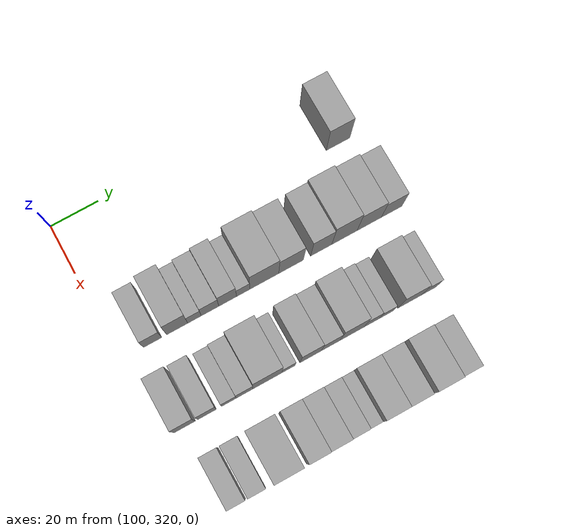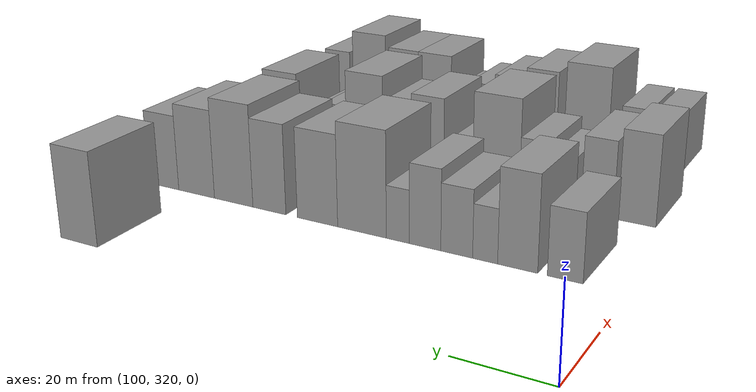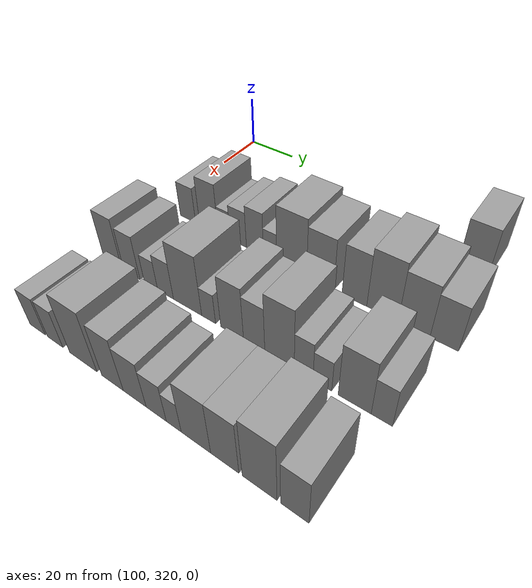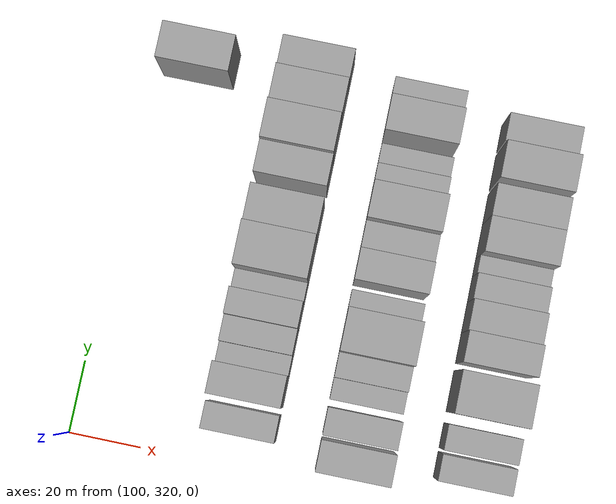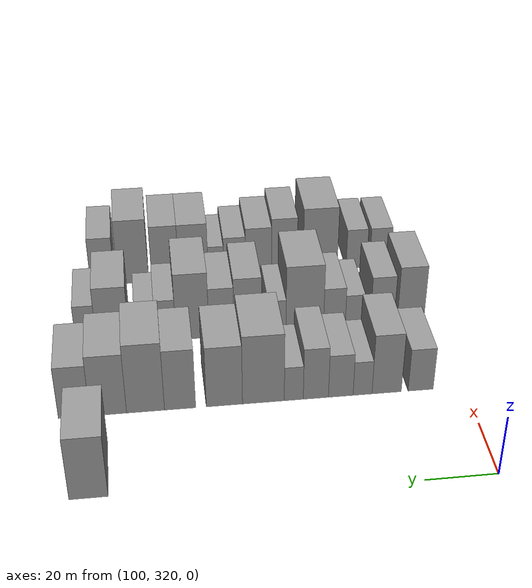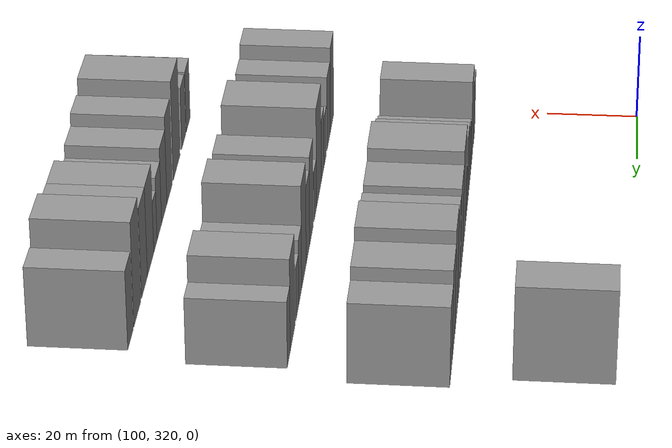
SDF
<sdf version="1.6">
 <world name="default">
  <model name="building_370">
   <static>1</static>
   <pose>114.0000 427.8332 0 0.000000 0.000000 0.000000</pose>
   <link name="link">
    <pose>0 0 10.50 0 0 0</pose>
    <collision name="collision"><geometry><box><size>20.0000 10.0763 21.0000</size></box></geometry></collision>
    <visual name="visual">
     <cast_shadows>0</cast_shadows>
     <geometry><box><size>20.0000 10.0763 21.0000</size></box></geometry>
     <material>
      <script>
       <uri>model://grey_wall/materials/scripts</uri>
       <uri>model://grey_wall/materials/textures</uri>
       <name>vrc/grey_wall</name>
      </script>
     </material>
    </visual>
   </link>
  </model>
  <model name="building_470">
   <static>1</static>
   <pose>146.0000 332.8654 0 0.000000 0.000000 0.000000</pose>
   <link name="link">
    <pose>0 0 7.50 0 0 0</pose>
    <collision name="collision"><geometry><box><size>20.0000 7.3906 15.0000</size></box></geometry></collision>
    <visual name="visual">
     <cast_shadows>0</cast_shadows>
     <geometry><box><size>20.0000 7.3906 15.0000</size></box></geometry>
     <material>
      <script>
       <uri>model://grey_wall/materials/scripts</uri>
       <uri>model://grey_wall/materials/textures</uri>
       <name>vrc/grey_wall</name>
      </script>
     </material>
    </visual>
   </link>
  </model>
  <model name="building_471">
   <static>1</static>
   <pose>146.0000 342.8603 0 0.000000 0.000000 0.000000</pose>
   <link name="link">
    <pose>0 0 10.50 0 0 0</pose>
    <collision name="collision"><geometry><box><size>20.0000 8.5992 21.0000</size></box></geometry></collision>
    <visual name="visual">
     <cast_shadows>0</cast_shadows>
     <geometry><box><size>20.0000 8.5992 21.0000</size></box></geometry>
     <material>
      <script>
       <uri>model://grey_wall/materials/scripts</uri>
       <uri>model://grey_wall/materials/textures</uri>
       <name>vrc/grey_wall</name>
      </script>
     </material>
    </visual>
   </link>
  </model>
  <model name="building_472">
   <static>1</static>
   <pose>146.0000 349.9110 0 0.000000 0.000000 0.000000</pose>
   <link name="link">
    <pose>0 0 6.00 0 0 0</pose>
    <collision name="collision"><geometry><box><size>20.0000 5.5022 12.0000</size></box></geometry></collision>
    <visual name="visual">
     <cast_shadows>0</cast_shadows>
     <geometry><box><size>20.0000 5.5022 12.0000</size></box></geometry>
     <material>
      <script>
       <uri>model://grey_wall/materials/scripts</uri>
       <uri>model://grey_wall/materials/textures</uri>
       <name>vrc/grey_wall</name>
      </script>
     </material>
    </visual>
   </link>
  </model>
  <model name="building_473">
   <static>1</static>
   <pose>146.0000 356.2573 0 0.000000 0.000000 0.000000</pose>
   <link name="link">
    <pose>0 0 7.50 0 0 0</pose>
    <collision name="collision"><geometry><box><size>20.0000 7.1904 15.0000</size></box></geometry></collision>
    <visual name="visual">
     <cast_shadows>0</cast_shadows>
     <geometry><box><size>20.0000 7.1904 15.0000</size></box></geometry>
     <material>
      <script>
       <uri>model://grey_wall/materials/scripts</uri>
       <uri>model://grey_wall/materials/textures</uri>
       <name>vrc/grey_wall</name>
      </script>
     </material>
    </visual>
   </link>
  </model>
  <model name="building_474">
   <static>1</static>
   <pose>146.0000 363.4944 0 0.000000 0.000000 0.000000</pose>
   <link name="link">
    <pose>0 0 9.00 0 0 0</pose>
    <collision name="collision"><geometry><box><size>20.0000 7.2838 18.0000</size></box></geometry></collision>
    <visual name="visual">
     <cast_shadows>0</cast_shadows>
     <geometry><box><size>20.0000 7.2838 18.0000</size></box></geometry>
     <material>
      <script>
       <uri>model://grey_wall/materials/scripts</uri>
       <uri>model://grey_wall/materials/textures</uri>
       <name>vrc/grey_wall</name>
      </script>
     </material>
    </visual>
   </link>
  </model>
  <model name="building_475">
   <static>1</static>
   <pose>146.0000 369.8766 0 0.000000 0.000000 0.000000</pose>
   <link name="link">
    <pose>0 0 6.00 0 0 0</pose>
    <collision name="collision"><geometry><box><size>20.0000 5.4807 12.0000</size></box></geometry></collision>
    <visual name="visual">
     <cast_shadows>0</cast_shadows>
     <geometry><box><size>20.0000 5.4807 12.0000</size></box></geometry>
     <material>
      <script>
       <uri>model://grey_wall/materials/scripts</uri>
       <uri>model://grey_wall/materials/textures</uri>
       <name>vrc/grey_wall</name>
      </script>
     </material>
    </visual>
   </link>
  </model>
  <model name="building_476">
   <static>1</static>
   <pose>146.0000 378.6039 0 0.000000 0.000000 0.000000</pose>
   <link name="link">
    <pose>0 0 12.00 0 0 0</pose>
    <collision name="collision"><geometry><box><size>20.0000 11.9739 24.0000</size></box></geometry></collision>
    <visual name="visual">
     <cast_shadows>0</cast_shadows>
     <geometry><box><size>20.0000 11.9739 24.0000</size></box></geometry>
     <material>
      <script>
       <uri>model://grey_wall/materials/scripts</uri>
       <uri>model://grey_wall/materials/textures</uri>
       <name>vrc/grey_wall</name>
      </script>
     </material>
    </visual>
   </link>
  </model>
  <model name="building_477">
   <static>1</static>
   <pose>146.0000 389.7558 0 0.000000 0.000000 0.000000</pose>
   <link name="link">
    <pose>0 0 10.50 0 0 0</pose>
    <collision name="collision"><geometry><box><size>20.0000 10.3299 21.0000</size></box></geometry></collision>
    <visual name="visual">
     <cast_shadows>0</cast_shadows>
     <geometry><box><size>20.0000 10.3299 21.0000</size></box></geometry>
     <material>
      <script>
       <uri>model://grey_wall/materials/scripts</uri>
       <uri>model://grey_wall/materials/textures</uri>
       <name>vrc/grey_wall</name>
      </script>
     </material>
    </visual>
   </link>
  </model>
  <model name="building_478">
   <static>1</static>
   <pose>146.0000 402.3404 0 0.000000 0.000000 0.000000</pose>
   <link name="link">
    <pose>0 0 10.50 0 0 0</pose>
    <collision name="collision"><geometry><box><size>20.0000 8.8393 21.0000</size></box></geometry></collision>
    <visual name="visual">
     <cast_shadows>0</cast_shadows>
     <geometry><box><size>20.0000 8.8393 21.0000</size></box></geometry>
     <material>
      <script>
       <uri>model://grey_wall/materials/scripts</uri>
       <uri>model://grey_wall/materials/textures</uri>
       <name>vrc/grey_wall</name>
      </script>
     </material>
    </visual>
   </link>
  </model>
  <model name="building_479">
   <static>1</static>
   <pose>146.0000 412.0929 0 0.000000 0.000000 0.000000</pose>
   <link name="link">
    <pose>0 0 12.00 0 0 0</pose>
    <collision name="collision"><geometry><box><size>20.0000 10.6656 24.0000</size></box></geometry></collision>
    <visual name="visual">
     <cast_shadows>0</cast_shadows>
     <geometry><box><size>20.0000 10.6656 24.0000</size></box></geometry>
     <material>
      <script>
       <uri>model://grey_wall/materials/scripts</uri>
       <uri>model://grey_wall/materials/textures</uri>
       <name>vrc/grey_wall</name>
      </script>
     </material>
    </visual>
   </link>
  </model>
  <model name="building_480">
   <static>1</static>
   <pose>146.0000 422.5593 0 0.000000 0.000000 0.000000</pose>
   <link name="link">
    <pose>0 0 10.50 0 0 0</pose>
    <collision name="collision"><geometry><box><size>20.0000 10.2672 21.0000</size></box></geometry></collision>
    <visual name="visual">
     <cast_shadows>0</cast_shadows>
     <geometry><box><size>20.0000 10.2672 21.0000</size></box></geometry>
     <material>
      <script>
       <uri>model://grey_wall/materials/scripts</uri>
       <uri>model://grey_wall/materials/textures</uri>
       <name>vrc/grey_wall</name>
      </script>
     </material>
    </visual>
   </link>
  </model>
  <model name="building_481">
   <static>1</static>
   <pose>146.0000 432.0831 0 0.000000 0.000000 0.000000</pose>
   <link name="link">
    <pose>0 0 9.00 0 0 0</pose>
    <collision name="collision"><geometry><box><size>20.0000 8.7803 18.0000</size></box></geometry></collision>
    <visual name="visual">
     <cast_shadows>0</cast_shadows>
     <geometry><box><size>20.0000 8.7803 18.0000</size></box></geometry>
     <material>
      <script>
       <uri>model://grey_wall/materials/scripts</uri>
       <uri>model://grey_wall/materials/textures</uri>
       <name>vrc/grey_wall</name>
      </script>
     </material>
    </visual>
   </link>
  </model>
  <model name="building_599">
   <static>1</static>
   <pose>178.0000 328.7805 0 0.000000 0.000000 0.000000</pose>
   <link name="link">
    <pose>0 0 10.50 0 0 0</pose>
    <collision name="collision"><geometry><box><size>20.0000 8.4608 21.0000</size></box></geometry></collision>
    <visual name="visual">
     <cast_shadows>0</cast_shadows>
     <geometry><box><size>20.0000 8.4608 21.0000</size></box></geometry>
     <material>
      <script>
       <uri>model://grey_wall/materials/scripts</uri>
       <uri>model://grey_wall/materials/textures</uri>
       <name>vrc/grey_wall</name>
      </script>
     </material>
    </visual>
   </link>
  </model>
  <model name="building_600">
   <static>1</static>
   <pose>178.0000 337.7452 0 0.000000 0.000000 0.000000</pose>
   <link name="link">
    <pose>0 0 9.00 0 0 0</pose>
    <collision name="collision"><geometry><box><size>20.0000 7.4686 18.0000</size></box></geometry></collision>
    <visual name="visual">
     <cast_shadows>0</cast_shadows>
     <geometry><box><size>20.0000 7.4686 18.0000</size></box></geometry>
     <material>
      <script>
       <uri>model://grey_wall/materials/scripts</uri>
       <uri>model://grey_wall/materials/textures</uri>
       <name>vrc/grey_wall</name>
      </script>
     </material>
    </visual>
   </link>
  </model>
  <model name="building_601">
   <static>1</static>
   <pose>178.0000 346.4367 0 0.000000 0.000000 0.000000</pose>
   <link name="link">
    <pose>0 0 6.00 0 0 0</pose>
    <collision name="collision"><geometry><box><size>20.0000 5.9143 12.0000</size></box></geometry></collision>
    <visual name="visual">
     <cast_shadows>0</cast_shadows>
     <geometry><box><size>20.0000 5.9143 12.0000</size></box></geometry>
     <material>
      <script>
       <uri>model://grey_wall/materials/scripts</uri>
       <uri>model://grey_wall/materials/textures</uri>
       <name>vrc/grey_wall</name>
      </script>
     </material>
    </visual>
   </link>
  </model>
  <model name="building_602">
   <static>1</static>
   <pose>178.0000 352.8055 0 0.000000 0.000000 0.000000</pose>
   <link name="link">
    <pose>0 0 7.50 0 0 0</pose>
    <collision name="collision"><geometry><box><size>20.0000 6.8233 15.0000</size></box></geometry></collision>
    <visual name="visual">
     <cast_shadows>0</cast_shadows>
     <geometry><box><size>20.0000 6.8233 15.0000</size></box></geometry>
     <material>
      <script>
       <uri>model://grey_wall/materials/scripts</uri>
       <uri>model://grey_wall/materials/textures</uri>
       <name>vrc/grey_wall</name>
      </script>
     </material>
    </visual>
   </link>
  </model>
  <model name="building_603">
   <static>1</static>
   <pose>178.0000 362.0570 0 0.000000 0.000000 0.000000</pose>
   <link name="link">
    <pose>0 0 12.00 0 0 0</pose>
    <collision name="collision"><geometry><box><size>20.0000 11.6797 24.0000</size></box></geometry></collision>
    <visual name="visual">
     <cast_shadows>0</cast_shadows>
     <geometry><box><size>20.0000 11.6797 24.0000</size></box></geometry>
     <material>
      <script>
       <uri>model://grey_wall/materials/scripts</uri>
       <uri>model://grey_wall/materials/textures</uri>
       <name>vrc/grey_wall</name>
      </script>
     </material>
    </visual>
   </link>
  </model>
  <model name="building_604">
   <static>1</static>
   <pose>178.0000 370.6380 0 0.000000 0.000000 0.000000</pose>
   <link name="link">
    <pose>0 0 6.00 0 0 0</pose>
    <collision name="collision"><geometry><box><size>20.0000 5.4823 12.0000</size></box></geometry></collision>
    <visual name="visual">
     <cast_shadows>0</cast_shadows>
     <geometry><box><size>20.0000 5.4823 12.0000</size></box></geometry>
     <material>
      <script>
       <uri>model://grey_wall/materials/scripts</uri>
       <uri>model://grey_wall/materials/textures</uri>
       <name>vrc/grey_wall</name>
      </script>
     </material>
    </visual>
   </link>
  </model>
  <model name="building_605">
   <static>1</static>
   <pose>178.0000 379.6822 0 0.000000 0.000000 0.000000</pose>
   <link name="link">
    <pose>0 0 10.50 0 0 0</pose>
    <collision name="collision"><geometry><box><size>20.0000 8.6060 21.0000</size></box></geometry></collision>
    <visual name="visual">
     <cast_shadows>0</cast_shadows>
     <geometry><box><size>20.0000 8.6060 21.0000</size></box></geometry>
     <material>
      <script>
       <uri>model://grey_wall/materials/scripts</uri>
       <uri>model://grey_wall/materials/textures</uri>
       <name>vrc/grey_wall</name>
      </script>
     </material>
    </visual>
   </link>
  </model>
  <model name="building_606">
   <static>1</static>
   <pose>178.0000 387.8348 0 0.000000 0.000000 0.000000</pose>
   <link name="link">
    <pose>0 0 9.00 0 0 0</pose>
    <collision name="collision"><geometry><box><size>20.0000 7.6992 18.0000</size></box></geometry></collision>
    <visual name="visual">
     <cast_shadows>0</cast_shadows>
     <geometry><box><size>20.0000 7.6992 18.0000</size></box></geometry>
     <material>
      <script>
       <uri>model://grey_wall/materials/scripts</uri>
       <uri>model://grey_wall/materials/textures</uri>
       <name>vrc/grey_wall</name>
      </script>
     </material>
    </visual>
   </link>
  </model>
  <model name="building_607">
   <static>1</static>
   <pose>178.0000 396.7441 0 0.000000 0.000000 0.000000</pose>
   <link name="link">
    <pose>0 0 12.00 0 0 0</pose>
    <collision name="collision"><geometry><box><size>20.0000 10.1196 24.0000</size></box></geometry></collision>
    <visual name="visual">
     <cast_shadows>0</cast_shadows>
     <geometry><box><size>20.0000 10.1196 24.0000</size></box></geometry>
     <material>
      <script>
       <uri>model://grey_wall/materials/scripts</uri>
       <uri>model://grey_wall/materials/textures</uri>
       <name>vrc/grey_wall</name>
      </script>
     </material>
    </visual>
   </link>
  </model>
  <model name="building_608">
   <static>1</static>
   <pose>178.0000 404.8907 0 0.000000 0.000000 0.000000</pose>
   <link name="link">
    <pose>0 0 7.50 0 0 0</pose>
    <collision name="collision"><geometry><box><size>20.0000 6.1735 15.0000</size></box></geometry></collision>
    <visual name="visual">
     <cast_shadows>0</cast_shadows>
     <geometry><box><size>20.0000 6.1735 15.0000</size></box></geometry>
     <material>
      <script>
       <uri>model://grey_wall/materials/scripts</uri>
       <uri>model://grey_wall/materials/textures</uri>
       <name>vrc/grey_wall</name>
      </script>
     </material>
    </visual>
   </link>
  </model>
  <model name="building_609">
   <static>1</static>
   <pose>178.0000 410.9638 0 0.000000 0.000000 0.000000</pose>
   <link name="link">
    <pose>0 0 6.00 0 0 0</pose>
    <collision name="collision"><geometry><box><size>20.0000 5.9727 12.0000</size></box></geometry></collision>
    <visual name="visual">
     <cast_shadows>0</cast_shadows>
     <geometry><box><size>20.0000 5.9727 12.0000</size></box></geometry>
     <material>
      <script>
       <uri>model://grey_wall/materials/scripts</uri>
       <uri>model://grey_wall/materials/textures</uri>
       <name>vrc/grey_wall</name>
      </script>
     </material>
    </visual>
   </link>
  </model>
  <model name="building_610">
   <static>1</static>
   <pose>178.0000 420.9175 0 0.000000 0.000000 0.000000</pose>
   <link name="link">
    <pose>0 0 10.50 0 0 0</pose>
    <collision name="collision"><geometry><box><size>20.0000 9.9346 21.0000</size></box></geometry></collision>
    <visual name="visual">
     <cast_shadows>0</cast_shadows>
     <geometry><box><size>20.0000 9.9346 21.0000</size></box></geometry>
     <material>
      <script>
       <uri>model://grey_wall/materials/scripts</uri>
       <uri>model://grey_wall/materials/textures</uri>
       <name>vrc/grey_wall</name>
      </script>
     </material>
    </visual>
   </link>
  </model>
  <model name="building_611">
   <static>1</static>
   <pose>178.0000 428.9545 0 0.000000 0.000000 0.000000</pose>
   <link name="link">
    <pose>0 0 7.50 0 0 0</pose>
    <collision name="collision"><geometry><box><size>20.0000 6.1394 15.0000</size></box></geometry></collision>
    <visual name="visual">
     <cast_shadows>0</cast_shadows>
     <geometry><box><size>20.0000 6.1394 15.0000</size></box></geometry>
     <material>
      <script>
       <uri>model://grey_wall/materials/scripts</uri>
       <uri>model://grey_wall/materials/textures</uri>
       <name>vrc/grey_wall</name>
      </script>
     </material>
    </visual>
   </link>
  </model>
  <model name="building_719">
   <static>1</static>
   <pose>210.0000 331.9798 0 0.000000 0.000000 0.000000</pose>
   <link name="link">
    <pose>0 0 7.50 0 0 0</pose>
    <collision name="collision"><geometry><box><size>20.0000 7.1273 15.0000</size></box></geometry></collision>
    <visual name="visual">
     <cast_shadows>0</cast_shadows>
     <geometry><box><size>20.0000 7.1273 15.0000</size></box></geometry>
     <material>
      <script>
       <uri>model://grey_wall/materials/scripts</uri>
       <uri>model://grey_wall/materials/textures</uri>
       <name>vrc/grey_wall</name>
      </script>
     </material>
    </visual>
   </link>
  </model>
  <model name="building_720">
   <static>1</static>
   <pose>210.0000 340.0164 0 0.000000 0.000000 0.000000</pose>
   <link name="link">
    <pose>0 0 7.50 0 0 0</pose>
    <collision name="collision"><geometry><box><size>20.0000 6.9459 15.0000</size></box></geometry></collision>
    <visual name="visual">
     <cast_shadows>0</cast_shadows>
     <geometry><box><size>20.0000 6.9459 15.0000</size></box></geometry>
     <material>
      <script>
       <uri>model://grey_wall/materials/scripts</uri>
       <uri>model://grey_wall/materials/textures</uri>
       <name>vrc/grey_wall</name>
      </script>
     </material>
    </visual>
   </link>
  </model>
  <model name="building_721">
   <static>1</static>
   <pose>210.0000 352.2280 0 0.000000 0.000000 0.000000</pose>
   <link name="link">
    <pose>0 0 12.00 0 0 0</pose>
    <collision name="collision"><geometry><box><size>20.0000 11.4773 24.0000</size></box></geometry></collision>
    <visual name="visual">
     <cast_shadows>0</cast_shadows>
     <geometry><box><size>20.0000 11.4773 24.0000</size></box></geometry>
     <material>
      <script>
       <uri>model://grey_wall/materials/scripts</uri>
       <uri>model://grey_wall/materials/textures</uri>
       <name>vrc/grey_wall</name>
      </script>
     </material>
    </visual>
   </link>
  </model>
  <model name="building_722">
   <static>1</static>
   <pose>210.0000 364.2206 0 0.000000 0.000000 0.000000</pose>
   <link name="link">
    <pose>0 0 10.50 0 0 0</pose>
    <collision name="collision"><geometry><box><size>20.0000 8.5079 21.0000</size></box></geometry></collision>
    <visual name="visual">
     <cast_shadows>0</cast_shadows>
     <geometry><box><size>20.0000 8.5079 21.0000</size></box></geometry>
     <material>
      <script>
       <uri>model://grey_wall/materials/scripts</uri>
       <uri>model://grey_wall/materials/textures</uri>
       <name>vrc/grey_wall</name>
      </script>
     </material>
    </visual>
   </link>
  </model>
  <model name="building_723">
   <static>1</static>
   <pose>210.0000 372.7769 0 0.000000 0.000000 0.000000</pose>
   <link name="link">
    <pose>0 0 9.00 0 0 0</pose>
    <collision name="collision"><geometry><box><size>20.0000 8.6049 18.0000</size></box></geometry></collision>
    <visual name="visual">
     <cast_shadows>0</cast_shadows>
     <geometry><box><size>20.0000 8.6049 18.0000</size></box></geometry>
     <material>
      <script>
       <uri>model://grey_wall/materials/scripts</uri>
       <uri>model://grey_wall/materials/textures</uri>
       <name>vrc/grey_wall</name>
      </script>
     </material>
    </visual>
   </link>
  </model>
  <model name="building_724">
   <static>1</static>
   <pose>210.0000 380.6951 0 0.000000 0.000000 0.000000</pose>
   <link name="link">
    <pose>0 0 7.50 0 0 0</pose>
    <collision name="collision"><geometry><box><size>20.0000 7.2314 15.0000</size></box></geometry></collision>
    <visual name="visual">
     <cast_shadows>0</cast_shadows>
     <geometry><box><size>20.0000 7.2314 15.0000</size></box></geometry>
     <material>
      <script>
       <uri>model://grey_wall/materials/scripts</uri>
       <uri>model://grey_wall/materials/textures</uri>
       <name>vrc/grey_wall</name>
      </script>
     </material>
    </visual>
   </link>
  </model>
  <model name="building_725">
   <static>1</static>
   <pose>210.0000 386.8893 0 0.000000 0.000000 0.000000</pose>
   <link name="link">
    <pose>0 0 6.00 0 0 0</pose>
    <collision name="collision"><geometry><box><size>20.0000 5.1571 12.0000</size></box></geometry></collision>
    <visual name="visual">
     <cast_shadows>0</cast_shadows>
     <geometry><box><size>20.0000 5.1571 12.0000</size></box></geometry>
     <material>
      <script>
       <uri>model://grey_wall/materials/scripts</uri>
       <uri>model://grey_wall/materials/textures</uri>
       <name>vrc/grey_wall</name>
      </script>
     </material>
    </visual>
   </link>
  </model>
  <model name="building_726">
   <static>1</static>
   <pose>210.0000 394.3266 0 0.000000 0.000000 0.000000</pose>
   <link name="link">
    <pose>0 0 10.50 0 0 0</pose>
    <collision name="collision"><geometry><box><size>20.0000 9.7175 21.0000</size></box></geometry></collision>
    <visual name="visual">
     <cast_shadows>0</cast_shadows>
     <geometry><box><size>20.0000 9.7175 21.0000</size></box></geometry>
     <material>
      <script>
       <uri>model://grey_wall/materials/scripts</uri>
       <uri>model://grey_wall/materials/textures</uri>
       <name>vrc/grey_wall</name>
      </script>
     </material>
    </visual>
   </link>
  </model>
  <model name="building_727">
   <static>1</static>
   <pose>210.0000 403.5790 0 0.000000 0.000000 0.000000</pose>
   <link name="link">
    <pose>0 0 10.50 0 0 0</pose>
    <collision name="collision"><geometry><box><size>20.0000 8.7872 21.0000</size></box></geometry></collision>
    <visual name="visual">
     <cast_shadows>0</cast_shadows>
     <geometry><box><size>20.0000 8.7872 21.0000</size></box></geometry>
     <material>
      <script>
       <uri>model://grey_wall/materials/scripts</uri>
       <uri>model://grey_wall/materials/textures</uri>
       <name>vrc/grey_wall</name>
      </script>
     </material>
    </visual>
   </link>
  </model>
  <model name="building_728">
   <static>1</static>
   <pose>210.0000 414.0385 0 0.000000 0.000000 0.000000</pose>
   <link name="link">
    <pose>0 0 12.00 0 0 0</pose>
    <collision name="collision"><geometry><box><size>20.0000 10.1317 24.0000</size></box></geometry></collision>
    <visual name="visual">
     <cast_shadows>0</cast_shadows>
     <geometry><box><size>20.0000 10.1317 24.0000</size></box></geometry>
     <material>
      <script>
       <uri>model://grey_wall/materials/scripts</uri>
       <uri>model://grey_wall/materials/textures</uri>
       <name>vrc/grey_wall</name>
      </script>
     </material>
    </visual>
   </link>
  </model>
  <model name="building_729">
   <static>1</static>
   <pose>210.0000 423.9856 0 0.000000 0.000000 0.000000</pose>
   <link name="link">
    <pose>0 0 9.00 0 0 0</pose>
    <collision name="collision"><geometry><box><size>20.0000 7.7624 18.0000</size></box></geometry></collision>
    <visual name="visual">
     <cast_shadows>0</cast_shadows>
     <geometry><box><size>20.0000 7.7624 18.0000</size></box></geometry>
     <material>
      <script>
       <uri>model://grey_wall/materials/scripts</uri>
       <uri>model://grey_wall/materials/textures</uri>
       <name>vrc/grey_wall</name>
      </script>
     </material>
    </visual>
   </link>
  </model>
 </world>
</sdf>
